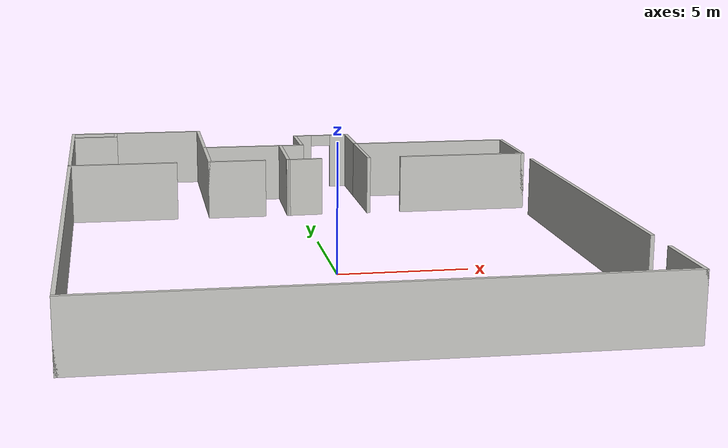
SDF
<?xml version='1.0'?>
<sdf version='1.6'>
  <model name='takeshiba'>
    <pose frame=''>0 4 0 0 -0 0</pose>
    <link name='Wall_14'>
      <collision name='Wall_14_Collision'>
        <geometry>
          <box>
            <size>4.65 0.15 2.5</size>
          </box>
        </geometry>
        <pose frame=''>0 0 1.25 0 -0 0</pose>
      </collision>
      <visual name='Wall_14_Visual'>
        <pose frame=''>0 0 1.25 0 -0 0</pose>
        <geometry>
          <box>
            <size>4.65 0.15 2.5</size>
          </box>
        </geometry>
        <material>
          <script>
            <uri>file://media/materials/scripts/gazebo.material</uri>
            <name>Gazebo/CeilingTiled</name>
          </script>
          <ambient>1 1 1 1</ambient>
        </material>
        <meta>
          <layer>0</layer>
        </meta>
      </visual>
      <pose frame=''>-7.75 6 0 0 -0 0</pose>
    </link>
    <link name='Wall_18'>
      <collision name='Wall_18_Collision'>
        <geometry>
          <box>
            <size>14.15 0.15 2.5</size>
          </box>
        </geometry>
        <pose frame=''>0 0 1.25 0 -0 0</pose>
      </collision>
      <visual name='Wall_18_Visual'>
        <pose frame=''>0 0 1.25 0 -0 0</pose>
        <geometry>
          <box>
            <size>14.15 0.15 2.5</size>
          </box>
        </geometry>
        <material>
          <script>
            <uri>file://media/materials/scripts/gazebo.material</uri>
            <name>Gazebo/CeilingTiled</name>
          </script>
          <ambient>1 1 1 1</ambient>
        </material>
        <meta>
          <layer>0</layer>
        </meta>
      </visual>
      <pose frame=''>10 -2.5 0 0 -0 1.5708</pose>
    </link>
    <link name='Wall_2'>
      <collision name='Wall_2_Collision'>
        <geometry>
          <box>
            <size>20.15 0.15 2.5</size>
          </box>
        </geometry>
        <pose frame=''>0 0 1.25 0 -0 0</pose>
      </collision>
      <visual name='Wall_2_Visual'>
        <pose frame=''>0 0 1.25 0 -0 0</pose>
        <geometry>
          <box>
            <size>20.15 0.15 2.5</size>
          </box>
        </geometry>
        <material>
          <script>
            <uri>file://media/materials/scripts/gazebo.material</uri>
            <name>Gazebo/CeilingTiled</name>
          </script>
          <ambient>1 1 1 1</ambient>
        </material>
        <meta>
          <layer>0</layer>
        </meta>
      </visual>
      <pose frame=''>-10 -4 0 0 -0 1.5708</pose>
    </link>
    <link name='Wall_20'>
      <collision name='Wall_20_Collision'>
        <geometry>
          <box>
            <size>5.65 0.15 2.5</size>
          </box>
        </geometry>
        <pose frame=''>0 0 1.25 0 -0 0</pose>
      </collision>
      <visual name='Wall_20_Visual'>
        <pose frame=''>0 0 1.25 0 -0 0</pose>
        <geometry>
          <box>
            <size>5.65 0.15 2.5</size>
          </box>
        </geometry>
        <material>
          <script>
            <uri>file://media/materials/scripts/gazebo.material</uri>
            <name>Gazebo/CeilingTiled</name>
          </script>
          <ambient>1 1 1 1</ambient>
        </material>
        <meta>
          <layer>0</layer>
        </meta>
      </visual>
      <pose frame=''>7.25 6 0 0 -0 0</pose>
    </link>
    <link name='Wall_24'>
      <collision name='Wall_24_Collision'>
        <geometry>
          <box>
            <size>8.15 0.15 2.5</size>
          </box>
        </geometry>
        <pose frame=''>0 0 1.25 0 -0 0</pose>
      </collision>
      <visual name='Wall_24_Visual'>
        <pose frame=''>0 0 1.25 0 -0 0</pose>
        <geometry>
          <box>
            <size>8.15 0.15 2.5</size>
          </box>
        </geometry>
        <material>
          <script>
            <uri>file://media/materials/scripts/gazebo.material</uri>
            <name>Gazebo/CeilingTiled</name>
          </script>
          <ambient>1 1 1 1</ambient>
        </material>
        <meta>
          <layer>0</layer>
        </meta>
      </visual>
      <pose frame=''>-10 10 0 0 -0 1.5708</pose>
    </link>
    <link name='Wall_25'>
      <collision name='Wall_25_Collision'>
        <geometry>
          <box>
            <size>6.15 0.15 2.5</size>
          </box>
        </geometry>
        <pose frame=''>0 0 1.25 0 -0 0</pose>
      </collision>
      <visual name='Wall_25_Visual'>
        <pose frame=''>0 0 1.25 0 -0 0</pose>
        <geometry>
          <box>
            <size>6.15 0.15 2.5</size>
          </box>
        </geometry>
        <material>
          <script>
            <uri>file://media/materials/scripts/gazebo.material</uri>
            <name>Gazebo/CeilingTiled</name>
          </script>
          <ambient>1 1 1 1</ambient>
        </material>
        <meta>
          <layer>0</layer>
        </meta>
      </visual>
      <pose frame=''>-7 14 0 0 -0 0</pose>
    </link>
    <link name='Wall_27'>
      <collision name='Wall_27_Collision'>
        <geometry>
          <box>
            <size>8.15 0.15 2.5</size>
          </box>
        </geometry>
        <pose frame=''>0 0 1.25 0 -0 0</pose>
      </collision>
      <visual name='Wall_27_Visual'>
        <pose frame=''>0 0 1.25 0 -0 0</pose>
        <geometry>
          <box>
            <size>8.15 0.15 2.5</size>
          </box>
        </geometry>
        <material>
          <script>
            <uri>file://media/materials/scripts/gazebo.material</uri>
            <name>Gazebo/CeilingTiled</name>
          </script>
          <ambient>1 1 1 1</ambient>
        </material>
        <meta>
          <layer>0</layer>
        </meta>
      </visual>
      <pose frame=''>-4 10 0 0 -0 -1.5708</pose>
    </link>
    <link name='Wall_29'>
      <collision name='Wall_29_Collision'>
        <geometry>
          <box>
            <size>1.15 0.15 2.5</size>
          </box>
        </geometry>
        <pose frame=''>0 0 1.25 0 -0 0</pose>
      </collision>
      <visual name='Wall_29_Visual'>
        <pose frame=''>0 0 1.25 0 -0 0</pose>
        <geometry>
          <box>
            <size>1.15 0.15 2.5</size>
          </box>
        </geometry>
        <material>
          <script>
            <uri>file://media/materials/scripts/gazebo.material</uri>
            <name>Gazebo/CeilingTiled</name>
          </script>
          <ambient>1 1 1 1</ambient>
        </material>
        <meta>
          <layer>0</layer>
        </meta>
      </visual>
      <pose frame=''>-8 13.5 0 0 -0 -1.5708</pose>
    </link>
    <link name='Wall_30'>
      <collision name='Wall_30_Collision'>
        <geometry>
          <box>
            <size>2.15 0.15 2.5</size>
          </box>
        </geometry>
        <pose frame=''>0 0 1.25 0 -0 0</pose>
      </collision>
      <visual name='Wall_30_Visual'>
        <pose frame=''>0 0 1.25 0 -0 0</pose>
        <geometry>
          <box>
            <size>2.15 0.15 2.5</size>
          </box>
        </geometry>
        <material>
          <script>
            <uri>file://media/materials/scripts/gazebo.material</uri>
            <name>Gazebo/CeilingTiled</name>
          </script>
          <ambient>1 1 1 1</ambient>
        </material>
        <meta>
          <layer>0</layer>
        </meta>
      </visual>
      <pose frame=''>-9 13 0 0 -0 3.14159</pose>
    </link>
    <link name='Wall_32'>
      <collision name='Wall_32_Collision'>
        <geometry>
          <box>
            <size>3.65 0.15 2.5</size>
          </box>
        </geometry>
        <pose frame=''>0 0 1.25 0 -0 0</pose>
      </collision>
      <visual name='Wall_32_Visual'>
        <pose frame=''>0 0 1.25 0 -0 0</pose>
        <geometry>
          <box>
            <size>3.65 0.15 2.5</size>
          </box>
        </geometry>
        <material>
          <script>
            <uri>file://media/materials/scripts/gazebo.material</uri>
            <name>Gazebo/CeilingTiled</name>
          </script>
          <ambient>1 1 1 1</ambient>
        </material>
        <meta>
          <layer>0</layer>
        </meta>
      </visual>
      <pose frame=''>3 7.75 0 0 -0 1.5708</pose>
    </link>
    <link name='Wall_33'>
      <collision name='Wall_33_Collision'>
        <geometry>
          <box>
            <size>7.15 0.15 2.5</size>
          </box>
        </geometry>
        <pose frame=''>0 0 1.25 0 -0 0</pose>
      </collision>
      <visual name='Wall_33_Visual'>
        <pose frame=''>0 0 1.25 0 -0 0</pose>
        <geometry>
          <box>
            <size>7.15 0.15 2.5</size>
          </box>
        </geometry>
        <material>
          <script>
            <uri>file://media/materials/scripts/gazebo.material</uri>
            <name>Gazebo/CeilingTiled</name>
          </script>
          <ambient>1 1 1 1</ambient>
        </material>
        <meta>
          <layer>0</layer>
        </meta>
      </visual>
      <pose frame=''>6.5 9.5 0 0 -0 0</pose>
    </link>
    <link name='Wall_34'>
      <collision name='Wall_34_Collision'>
        <geometry>
          <box>
            <size>3.65 0.15 2.5</size>
          </box>
        </geometry>
        <pose frame=''>0 0 1.25 0 -0 0</pose>
      </collision>
      <visual name='Wall_34_Visual'>
        <pose frame=''>0 0 1.25 0 -0 0</pose>
        <geometry>
          <box>
            <size>3.65 0.15 2.5</size>
          </box>
        </geometry>
        <material>
          <script>
            <uri>file://media/materials/scripts/gazebo.material</uri>
            <name>Gazebo/CeilingTiled</name>
          </script>
          <ambient>1 1 1 1</ambient>
        </material>
        <meta>
          <layer>0</layer>
        </meta>
      </visual>
      <pose frame=''>10 7.75 0 0 -0 -1.5708</pose>
    </link>
    <link name='Wall_36'>
      <collision name='Wall_36_Collision'>
        <geometry>
          <box>
            <size>2.65 0.15 2.5</size>
          </box>
        </geometry>
        <pose frame=''>0 0 1.25 0 -0 0</pose>
      </collision>
      <visual name='Wall_36_Visual'>
        <pose frame=''>0 0 1.25 0 -0 0</pose>
        <geometry>
          <box>
            <size>2.65 0.15 2.5</size>
          </box>
        </geometry>
        <material>
          <script>
            <uri>file://media/materials/scripts/gazebo.material</uri>
            <name>Gazebo/CeilingTiled</name>
          </script>
          <ambient>1 1 1 1</ambient>
        </material>
        <meta>
          <layer>0</layer>
        </meta>
      </visual>
      <pose frame=''>3 10.75 0 0 -0 1.5708</pose>
    </link>
    <link name='Wall_37'>
      <pose frame=''>1.75 12 0 0 -0 3.14159</pose>
      <visual name='Wall_37_Visual_0'>
        <pose frame=''>-0.879763 0 1.25 0 -0 0</pose>
        <geometry>
          <box>
            <size>0.890473 0.15 2.5</size>
          </box>
        </geometry>
        <material>
          <script>
            <uri>file://media/materials/scripts/gazebo.material</uri>
            <name>Gazebo/CeilingTiled</name>
          </script>
          <ambient>1 1 1 1</ambient>
        </material>
        <meta>
          <layer>0</layer>
        </meta>
      </visual>
      <collision name='Wall_37_Collision_0'>
        <geometry>
          <box>
            <size>0.890473 0.15 2.5</size>
          </box>
        </geometry>
        <pose frame=''>-0.879763 0 1.25 0 -0 0</pose>
      </collision>
      <visual name='Wall_37_Visual_1'>
        <pose frame=''>0.895237 0 1.25 0 -0 0</pose>
        <geometry>
          <box>
            <size>0.859527 0.15 2.5</size>
          </box>
        </geometry>
        <material>
          <script>
            <uri>file://media/materials/scripts/gazebo.material</uri>
            <name>Gazebo/CeilingTiled</name>
          </script>
          <ambient>1 1 1 1</ambient>
        </material>
        <meta>
          <layer>0</layer>
        </meta>
      </visual>
      <collision name='Wall_37_Collision_1'>
        <geometry>
          <box>
            <size>0.859527 0.15 2.5</size>
          </box>
        </geometry>
        <pose frame=''>0.895237 0 1.25 0 -0 0</pose>
      </collision>
      <visual name='Wall_37_Visual_2'>
        <pose frame=''>0.015473 0 2.25 0 -0 0</pose>
        <geometry>
          <box>
            <size>0.9 0.15 0.5</size>
          </box>
        </geometry>
        <material>
          <script>
            <uri>file://media/materials/scripts/gazebo.material</uri>
            <name>Gazebo/CeilingTiled</name>
          </script>
          <ambient>1 1 1 1</ambient>
        </material>
        <meta>
          <layer>0</layer>
        </meta>
      </visual>
      <collision name='Wall_37_Collision_2'>
        <geometry>
          <box>
            <size>0.9 0.15 0.5</size>
          </box>
        </geometry>
        <pose frame=''>0.015473 0 2.25 0 -0 0</pose>
      </collision>
    </link>
    <link name='Wall_39'>
      <collision name='Wall_39_Collision'>
        <geometry>
          <box>
            <size>2.5 0.15 2.5</size>
          </box>
        </geometry>
        <pose frame=''>0 0 1.25 0 -0 0</pose>
      </collision>
      <visual name='Wall_39_Visual'>
        <pose frame=''>0 0 1.25 0 -0 0</pose>
        <geometry>
          <box>
            <size>2.5 0.15 2.5</size>
          </box>
        </geometry>
        <material>
          <script>
            <uri>file://media/materials/scripts/gazebo.material</uri>
            <name>Gazebo/CeilingTiled</name>
          </script>
          <ambient>1 1 1 1</ambient>
        </material>
        <meta>
          <layer>0</layer>
        </meta>
      </visual>
      <pose frame=''>-2.825 6 0 0 -0 0</pose>
    </link>
    <link name='Wall_41'>
      <collision name='Wall_41_Collision'>
        <geometry>
          <box>
            <size>2.65 0.15 2.5</size>
          </box>
        </geometry>
        <pose frame=''>0 0 1.25 0 -0 0</pose>
      </collision>
      <visual name='Wall_41_Visual'>
        <pose frame=''>0 0 1.25 0 -0 0</pose>
        <geometry>
          <box>
            <size>2.65 0.15 2.5</size>
          </box>
        </geometry>
        <material>
          <script>
            <uri>file://media/materials/scripts/gazebo.material</uri>
            <name>Gazebo/CeilingTiled</name>
          </script>
          <ambient>1 1 1 1</ambient>
        </material>
        <meta>
          <layer>0</layer>
        </meta>
      </visual>
      <pose frame=''>0.5 10.75 0 0 -0 -1.5708</pose>
    </link>
    <link name='Wall_42'>
      <collision name='Wall_42_Collision'>
        <geometry>
          <box>
            <size>4.65 0.15 2.5</size>
          </box>
        </geometry>
        <pose frame=''>0 0 1.25 0 -0 0</pose>
      </collision>
      <visual name='Wall_42_Visual'>
        <pose frame=''>0 0 1.25 0 -0 0</pose>
        <geometry>
          <box>
            <size>4.65 0.15 2.5</size>
          </box>
        </geometry>
        <material>
          <script>
            <uri>file://media/materials/scripts/gazebo.material</uri>
            <name>Gazebo/CeilingTiled</name>
          </script>
          <ambient>1 1 1 1</ambient>
        </material>
        <meta>
          <layer>0</layer>
        </meta>
      </visual>
      <pose frame=''>-1.75 9.5 0 0 -0 3.14159</pose>
    </link>
    <link name='Wall_44'>
      <collision name='Wall_44_Collision'>
        <geometry>
          <box>
            <size>3.6507 0.15 2.5</size>
          </box>
        </geometry>
        <pose frame=''>0 0 1.25 0 -0 0</pose>
      </collision>
      <visual name='Wall_44_Visual'>
        <pose frame=''>0 0 1.25 0 -0 0</pose>
        <geometry>
          <box>
            <size>3.6507 0.15 2.5</size>
          </box>
        </geometry>
        <material>
          <script>
            <uri>file://media/materials/scripts/gazebo.material</uri>
            <name>Gazebo/CeilingTiled</name>
          </script>
          <ambient>1 1 1 1</ambient>
        </material>
        <meta>
          <layer>0</layer>
        </meta>
      </visual>
      <pose frame=''>-0.535 7.75 0 0 -0 1.5508</pose>
    </link>
    <link name='Wall_46'>
      <collision name='Wall_46_Collision'>
        <geometry>
          <box>
            <size>1.56118 0.15 2.5</size>
          </box>
        </geometry>
        <pose frame=''>0 0 1.25 0 -0 0</pose>
      </collision>
      <visual name='Wall_46_Visual'>
        <pose frame=''>0 0 1.25 0 -0 0</pose>
        <geometry>
          <box>
            <size>1.56118 0.15 2.5</size>
          </box>
        </geometry>
        <material>
          <script>
            <uri>file://media/materials/scripts/gazebo.material</uri>
            <name>Gazebo/CeilingTiled</name>
          </script>
          <ambient>1 1 1 1</ambient>
        </material>
        <meta>
          <layer>0</layer>
        </meta>
      </visual>
      <pose frame=''>0.1355 6.0215 0 0 -0 0.030465</pose>
    </link>
    <link name='Wall_5'>
      <collision name='Wall_5_Collision'>
        <geometry>
          <box>
            <size>20.15 0.15 2.5</size>
          </box>
        </geometry>
        <pose frame=''>0 0 1.25 0 -0 0</pose>
      </collision>
      <visual name='Wall_5_Visual'>
        <pose frame=''>0 0 1.25 0 -0 0</pose>
        <geometry>
          <box>
            <size>20.15 0.15 2.5</size>
          </box>
        </geometry>
        <material>
          <script>
            <uri>file://media/materials/scripts/gazebo.material</uri>
            <name>Gazebo/CeilingTiled</name>
          </script>
          <ambient>1 1 1 1</ambient>
        </material>
        <meta>
          <layer>0</layer>
        </meta>
      </visual>
      <pose frame=''>0 -14 0 0 -0 0</pose>
    </link>
    <link name='Wall_7'>
      <collision name='Wall_7_Collision'>
        <geometry>
          <box>
            <size>3 0.15 2.5</size>
          </box>
        </geometry>
        <pose frame=''>0 0 1.25 0 -0 0</pose>
      </collision>
      <visual name='Wall_7_Visual'>
        <pose frame=''>0 0 1.25 0 -0 0</pose>
        <geometry>
          <box>
            <size>3 0.15 2.5</size>
          </box>
        </geometry>
        <material>
          <script>
            <uri>file://media/materials/scripts/gazebo.material</uri>
            <name>Gazebo/CeilingTiled</name>
          </script>
          <ambient>1 1 1 1</ambient>
        </material>
        <meta>
          <layer>0</layer>
        </meta>
      </visual>
      <pose frame=''>10 -12.575 0 0 -0 1.5708</pose>
    </link>
    <static>1</static>
  </model>
</sdf>
